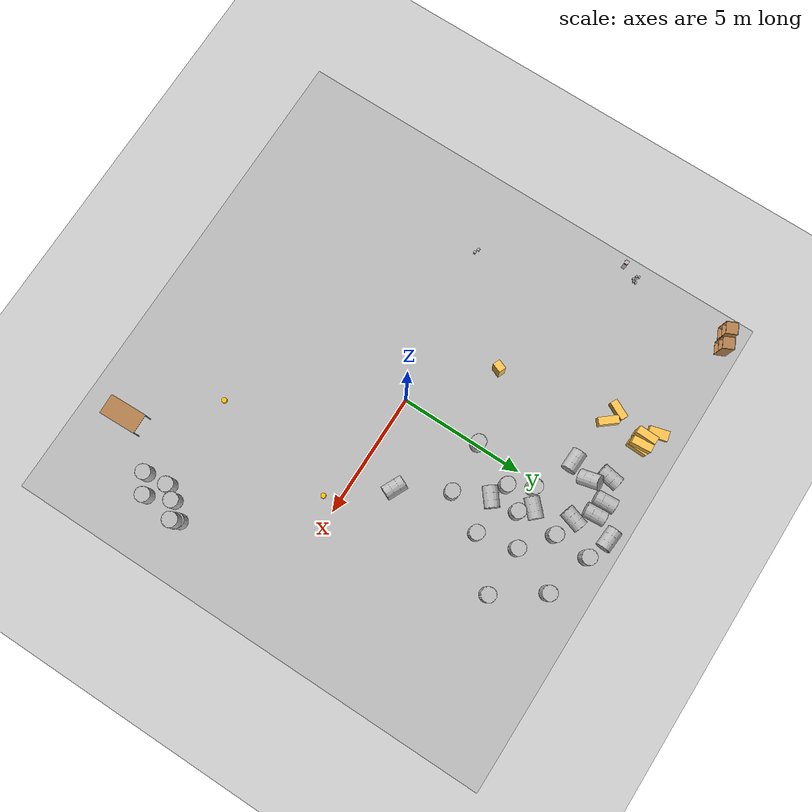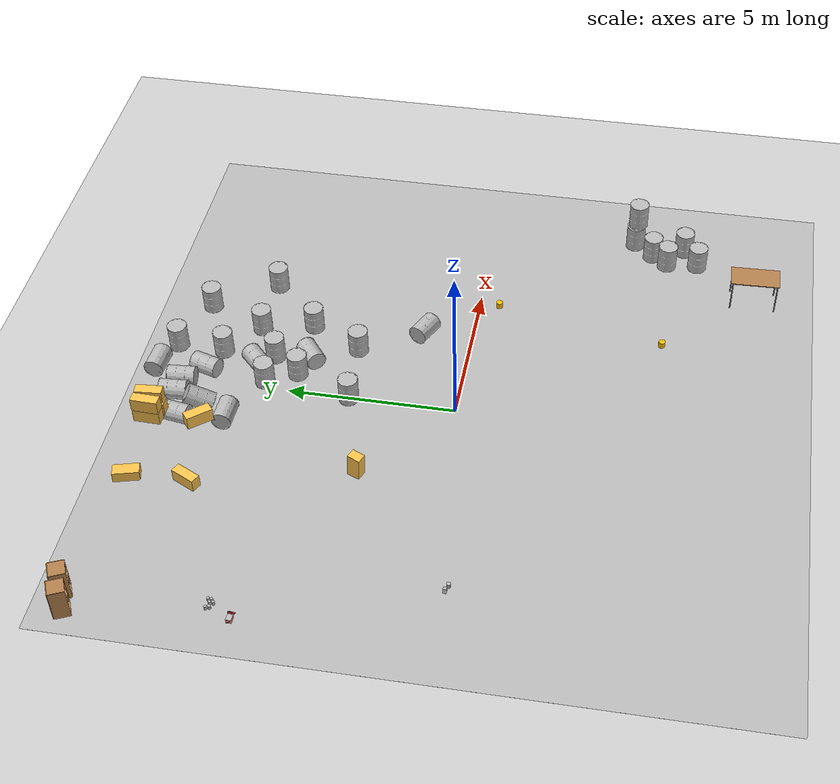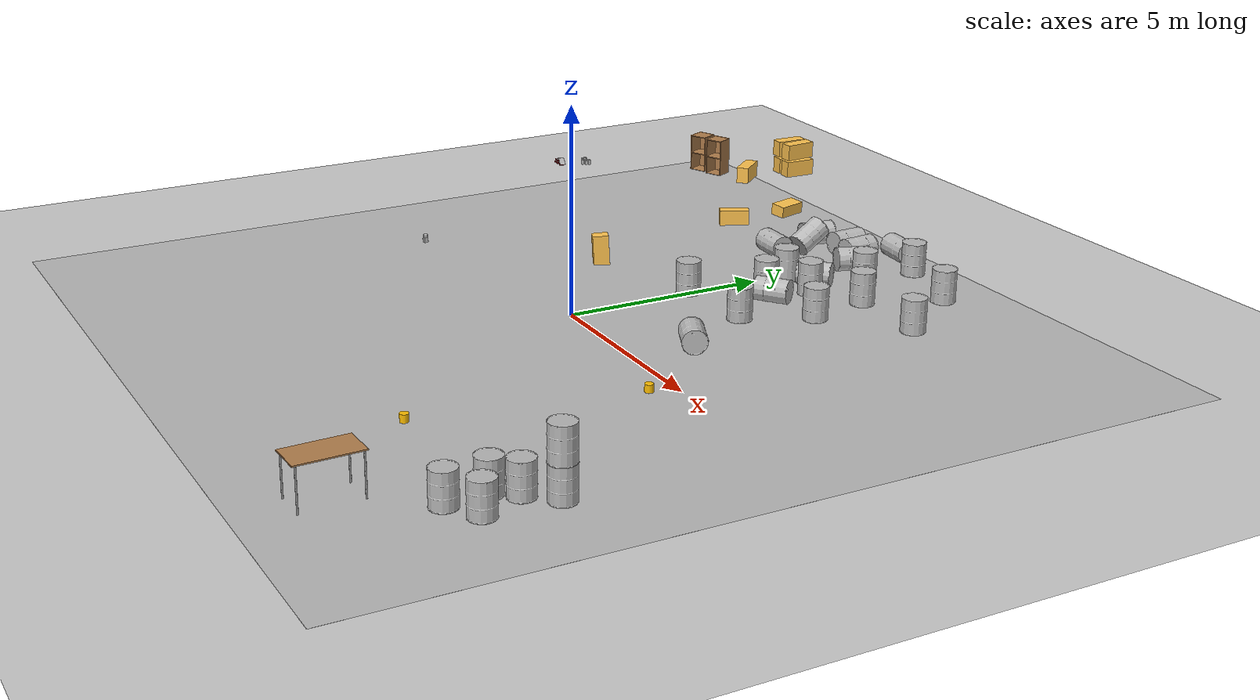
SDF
<sdf version="1.7">
 <world name="default">
  <model name="ground_plane">
   <static>1</static>
   <link name="link">
    <collision name="collision">
     <geometry><plane><normal>0 0 1</normal><size>100 100</size></plane></geometry>
     <surface><friction><ode><mu>100</mu><mu2>50</mu2></ode></friction></surface>
    </collision>
    <visual name="visual">
     <cast_shadows>0</cast_shadows>
     <geometry><plane><normal>0 0 1</normal><size>100 100</size></plane></geometry>
     <material>
      <script><uri>file://media/materials/scripts/gazebo.material</uri><name>Gazebo/Grey</name></script>
     </material>
    </visual>
   </link>
  </model>
  <model name="Box_15x30">
   <link name="Wall">
    <pose>0 0 0.1985 0 -0 0</pose>
    <inertial>
     <mass>5</mass>
     <inertia><ixx>0.3089</ixx><iyy>0.1022</iyy><izz>0.2797</izz><ixy>0</ixy><ixz>0</ixz><iyz>0</iyz></inertia>
    </inertial>
    <collision name="Wall_Collision"><geometry><box><size>0.296 0.764 0.397</size></box></geometry></collision>
    <visual name="Wall_Visual">
     <geometry><box><size>0.296 0.764 0.397</size></box></geometry>
     <material>
      <script><uri>file://media/materials/scripts/gazebo.material</uri><name>Gazebo/Grey</name></script>
      <ambient>1 0.764706 0.305882 1</ambient>
     </material>
    </visual>
   </link>
   <static>1</static>
   <pose>-3.02054 6.65631 1.55151 0 -0 0.691063</pose>
  </model>
  <model name="cabinet">
   <static>1</static>
   <link name="cabinet_bottom_plate">
    <inertial>
     <pose>0 0 -1 0 -0 0</pose>
     <inertia><ixx>2.05</ixx><ixy>0</ixy><ixz>0</ixz><iyy>2.05</iyy><iyz>0</iyz><izz>2.05</izz></inertia>
     <mass>25</mass>
    </inertial>
    <collision name="cabinet_bottom_plate_geom">
     <pose>0 0 0.01 0 -0 0</pose>
     <geometry><box><size>0.45 0.45 0.02</size></box></geometry>
    </collision>
    <visual name="cabinet_bottom_plate_geom_visual">
     <pose>0 0 0.01 0 -0 0</pose>
     <geometry><box><size>0.45 0.45 0.02</size></box></geometry>
     <material>
      <script><uri>file://media/materials/scripts/gazebo.material</uri><name>Gazebo/Wood</name></script>
     </material>
    </visual>
    <collision name="cabinet_bottom_plate_geom_cabinet_back_plate">
     <pose>0.235 0 0.51 0 -0 0</pose>
     <geometry><box><size>0.02 0.45 1.02</size></box></geometry>
    </collision>
    <visual name="cabinet_bottom_plate_geom_cabinet_back_plate_visual">
     <pose>0.235 0 0.51 0 -0 0</pose>
     <geometry><box><size>0.02 0.45 1.02</size></box></geometry>
     <material>
      <script><uri>file://media/materials/scripts/gazebo.material</uri><name>Gazebo/Wood</name></script>
     </material>
    </visual>
    <collision name="cabinet_bottom_plate_geom_cabinet_left_plate">
     <pose>0 0.235 0.51 0 -0 0</pose>
     <geometry><box><size>0.45 0.02 1.02</size></box></geometry>
    </collision>
    <visual name="cabinet_bottom_plate_geom_cabinet_left_plate_visual">
     <pose>0 0.235 0.51 0 -0 0</pose>
     <geometry><box><size>0.45 0.02 1.02</size></box></geometry>
     <material>
      <script><uri>file://media/materials/scripts/gazebo.material</uri><name>Gazebo/Wood</name></script>
     </material>
    </visual>
    <collision name="cabinet_bottom_plate_geom_cabinet_middle_plate">
     <pose>0 0 0.51 0 -0 0</pose>
     <geometry><box><size>0.45 0.45 0.02</size></box></geometry>
    </collision>
    <visual name="cabinet_bottom_plate_geom_cabinet_middle_plate_visual">
     <pose>0 0 0.51 0 -0 0</pose>
     <geometry><box><size>0.45 0.45 0.02</size></box></geometry>
     <material>
      <script><uri>file://media/materials/scripts/gazebo.material</uri><name>Gazebo/Wood</name></script>
     </material>
    </visual>
    <collision name="cabinet_bottom_plate_geom_cabinet_right_plate">
     <pose>0 -0.235 0.51 0 -0 0</pose>
     <geometry><box><size>0.45 0.02 1.02</size></box></geometry>
    </collision>
    <visual name="cabinet_bottom_plate_geom_cabinet_right_plate_visual">
     <pose>0 -0.235 0.51 0 -0 0</pose>
     <geometry><box><size>0.45 0.02 1.02</size></box></geometry>
     <material>
      <script><uri>file://media/materials/scripts/gazebo.material</uri><name>Gazebo/Wood</name></script>
     </material>
    </visual>
    <collision name="cabinet_bottom_plate_geom_cabinet_top_plate">
     <pose>0 0 1.01 0 -0 0</pose>
     <geometry><box><size>0.45 0.45 0.02</size></box></geometry>
    </collision>
    <visual name="cabinet_bottom_plate_geom_cabinet_top_plate_visual">
     <pose>0 0 1.01 0 -0 0</pose>
     <geometry><box><size>0.45 0.45 0.02</size></box></geometry>
     <material>
      <script><uri>file://media/materials/scripts/gazebo.material</uri><name>Gazebo/Wood</name></script>
     </material>
    </visual>
   </link>
   <pose>-8.77211 8.83368 0 0 -0 2</pose>
  </model>
  <model name="cabinet_clone">
   <static>1</static>
   <link name="cabinet_bottom_plate">
    <inertial>
     <pose>0 0 -1 0 -0 0</pose>
     <inertia><ixx>2.05</ixx><ixy>0</ixy><ixz>0</ixz><iyy>2.05</iyy><iyz>0</iyz><izz>2.05</izz></inertia>
     <mass>25</mass>
    </inertial>
    <collision name="cabinet_bottom_plate_geom">
     <pose>0 0 0.01 0 -0 0</pose>
     <geometry><box><size>0.45 0.45 0.02</size></box></geometry>
    </collision>
    <visual name="cabinet_bottom_plate_geom_visual">
     <pose>0 0 0.01 0 -0 0</pose>
     <geometry><box><size>0.45 0.45 0.02</size></box></geometry>
     <material>
      <script><uri>file://media/materials/scripts/gazebo.material</uri><name>Gazebo/Wood</name></script>
     </material>
    </visual>
    <collision name="cabinet_bottom_plate_geom_cabinet_back_plate">
     <pose>0.235 0 0.51 0 -0 0</pose>
     <geometry><box><size>0.02 0.45 1.02</size></box></geometry>
    </collision>
    <visual name="cabinet_bottom_plate_geom_cabinet_back_plate_visual">
     <pose>0.235 0 0.51 0 -0 0</pose>
     <geometry><box><size>0.02 0.45 1.02</size></box></geometry>
     <material>
      <script><uri>file://media/materials/scripts/gazebo.material</uri><name>Gazebo/Wood</name></script>
     </material>
    </visual>
    <collision name="cabinet_bottom_plate_geom_cabinet_left_plate">
     <pose>0 0.235 0.51 0 -0 0</pose>
     <geometry><box><size>0.45 0.02 1.02</size></box></geometry>
    </collision>
    <visual name="cabinet_bottom_plate_geom_cabinet_left_plate_visual">
     <pose>0 0.235 0.51 0 -0 0</pose>
     <geometry><box><size>0.45 0.02 1.02</size></box></geometry>
     <material>
      <script><uri>file://media/materials/scripts/gazebo.material</uri><name>Gazebo/Wood</name></script>
     </material>
    </visual>
    <collision name="cabinet_bottom_plate_geom_cabinet_middle_plate">
     <pose>0 0 0.51 0 -0 0</pose>
     <geometry><box><size>0.45 0.45 0.02</size></box></geometry>
    </collision>
    <visual name="cabinet_bottom_plate_geom_cabinet_middle_plate_visual">
     <pose>0 0 0.51 0 -0 0</pose>
     <geometry><box><size>0.45 0.45 0.02</size></box></geometry>
     <material>
      <script><uri>file://media/materials/scripts/gazebo.material</uri><name>Gazebo/Wood</name></script>
     </material>
    </visual>
    <collision name="cabinet_bottom_plate_geom_cabinet_right_plate">
     <pose>0 -0.235 0.51 0 -0 0</pose>
     <geometry><box><size>0.45 0.02 1.02</size></box></geometry>
    </collision>
    <visual name="cabinet_bottom_plate_geom_cabinet_right_plate_visual">
     <pose>0 -0.235 0.51 0 -0 0</pose>
     <geometry><box><size>0.45 0.02 1.02</size></box></geometry>
     <material>
      <script><uri>file://media/materials/scripts/gazebo.material</uri><name>Gazebo/Wood</name></script>
     </material>
    </visual>
    <collision name="cabinet_bottom_plate_geom_cabinet_top_plate">
     <pose>0 0 1.01 0 -0 0</pose>
     <geometry><box><size>0.45 0.45 0.02</size></box></geometry>
    </collision>
    <visual name="cabinet_bottom_plate_geom_cabinet_top_plate_visual">
     <pose>0 0 1.01 0 -0 0</pose>
     <geometry><box><size>0.45 0.45 0.02</size></box></geometry>
     <material>
      <script><uri>file://media/materials/scripts/gazebo.material</uri><name>Gazebo/Wood</name></script>
     </material>
    </visual>
   </link>
   <pose>-8.20771 9.0077 0 0 -0 2</pose>
  </model>
  <model name="coffee_box">
   <link name="link_0">
    <visual name="visual">
     <pose>0 0 0.06 0 -0 0</pose>
     <geometry><cylinder><radius>0.04</radius><length>0.12</length></cylinder></geometry>
     <material>
      <script>
       <uri>model://coffee_box/materials/scripts</uri>
       <uri>model://coffee_box/materials/textures</uri>
       <name>coffee_pat</name>
      </script>
     </material>
    </visual>
    <collision name="collision">
     <geometry><cylinder><radius>0.04</radius><length>0.12</length></cylinder></geometry>
    </collision>
   </link>
   <static>1</static>
   <pose>-8.39102 4.9248 0.776361 0 -0 0</pose>
  </model>
  <model name="coffee_box_clone">
   <link name="link_0">
    <visual name="visual">
     <pose>0 0 0.06 0 -0 0</pose>
     <geometry><cylinder><radius>0.04</radius><length>0.12</length></cylinder></geometry>
     <material>
      <script>
       <uri>model://coffee_box/materials/scripts</uri>
       <uri>model://coffee_box/materials/textures</uri>
       <name>coffee_pat</name>
      </script>
     </material>
    </visual>
    <collision name="collision">
     <geometry><cylinder><radius>0.04</radius><length>0.12</length></cylinder></geometry>
    </collision>
   </link>
   <static>1</static>
   <pose>-8.4911 4.86199 0.776361 0 -0 0</pose>
  </model>
  <model name="coffee_box_clone_0">
   <link name="link_0">
    <visual name="visual">
     <pose>0 0 0.06 0 -0 0</pose>
     <geometry><cylinder><radius>0.04</radius><length>0.12</length></cylinder></geometry>
     <material>
      <script>
       <uri>model://coffee_box/materials/scripts</uri>
       <uri>model://coffee_box/materials/textures</uri>
       <name>coffee_pat</name>
      </script>
     </material>
    </visual>
    <collision name="collision">
     <geometry><cylinder><radius>0.04</radius><length>0.12</length></cylinder></geometry>
    </collision>
   </link>
   <static>1</static>
   <pose>-8.40065 4.83683 0.776361 0 -0 0</pose>
  </model>
  <model name="coffee_box_clone_1">
   <link name="link_0">
    <visual name="visual">
     <pose>0 0 0.06 0 -0 0</pose>
     <geometry><cylinder><radius>0.04</radius><length>0.12</length></cylinder></geometry>
     <material>
      <script>
       <uri>model://coffee_box/materials/scripts</uri>
       <uri>model://coffee_box/materials/textures</uri>
       <name>coffee_pat</name>
      </script>
     </material>
    </visual>
    <collision name="collision">
     <geometry><cylinder><radius>0.04</radius><length>0.12</length></cylinder></geometry>
    </collision>
   </link>
   <static>1</static>
   <pose>-8.48638 4.76785 0.776361 0 -0 0</pose>
  </model>
  <model name="coffee_box_clone_2">
   <link name="link_0">
    <visual name="visual">
     <pose>0 0 0.06 0 -0 0</pose>
     <geometry><cylinder><radius>0.04</radius><length>0.12</length></cylinder></geometry>
     <material>
      <script>
       <uri>model://coffee_box/materials/scripts</uri>
       <uri>model://coffee_box/materials/textures</uri>
       <name>coffee_pat</name>
      </script>
     </material>
    </visual>
    <collision name="collision">
     <geometry><cylinder><radius>0.04</radius><length>0.12</length></cylinder></geometry>
    </collision>
   </link>
   <static>1</static>
   <pose>-8.63013 4.82993 0.776361 0 -0 0</pose>
  </model>
  <model name="coffee_box_clone_3">
   <link name="link_0">
    <visual name="visual">
     <pose>0 0 0.06 0 -0 0</pose>
     <geometry><cylinder><radius>0.04</radius><length>0.12</length></cylinder></geometry>
     <material>
      <script>
       <uri>model://coffee_box/materials/scripts</uri>
       <uri>model://coffee_box/materials/textures</uri>
       <name>coffee_pat</name>
      </script>
     </material>
    </visual>
    <collision name="collision">
     <geometry><cylinder><radius>0.04</radius><length>0.12</length></cylinder></geometry>
    </collision>
   </link>
   <static>1</static>
   <pose>-8.66125 4.92731 0.776361 0 -0 0</pose>
  </model>
  <model name="biscuit_box">
   <link name="link">
    <pose>0 0 0.025 0 -0 0</pose>
    <visual name="visual">
     <geometry><box><size>0.2 0.15 0.05</size></box></geometry>
     <material>
      <ambient>0.423 0.019 0.035 1</ambient>
      <diffuse>0.423 0.019 0.035 1</diffuse>
      <specular>0.01 0.01 0.01 1</specular>
      <emissive>0 0 0 1</emissive>
     </material>
    </visual>
    <collision name="collision"><geometry><box><size>0.1 0.1 0.15</size></box></geometry></collision>
   </link>
   <link name="link_1">
    <pose>0 0 0.05 0 -0 0</pose>
    <visual name="visual">
     <geometry><box><size>0.2 0.15 0.001</size></box></geometry>
     <material>
      <script>
       <uri>model://biscuit_box/materials/scripts</uri>
       <uri>model://biscuit_box/materials/textures</uri>
       <name>biscuit_pat</name>
      </script>
     </material>
    </visual>
    <collision name="collision"><geometry><box><size>0.1 0.1 0.15</size></box></geometry></collision>
   </link>
   <static>1</static>
   <pose>-8.88673 4.23471 0.838766 0 0 -0.080076</pose>
  </model>
  <model name="biscuit_box_clone_0">
   <link name="link">
    <pose>0 0 0.025 0 -0 0</pose>
    <visual name="visual">
     <geometry><box><size>0.2 0.15 0.05</size></box></geometry>
     <material>
      <ambient>0.423 0.019 0.035 1</ambient>
      <diffuse>0.423 0.019 0.035 1</diffuse>
      <specular>0.01 0.01 0.01 1</specular>
      <emissive>0 0 0 1</emissive>
     </material>
    </visual>
    <collision name="collision"><geometry><box><size>0.1 0.1 0.15</size></box></geometry></collision>
   </link>
   <link name="link_1">
    <pose>0 0 0.05 0 -0 0</pose>
    <visual name="visual">
     <geometry><box><size>0.2 0.15 0.001</size></box></geometry>
     <material>
      <script>
       <uri>model://biscuit_box/materials/scripts</uri>
       <uri>model://biscuit_box/materials/textures</uri>
       <name>biscuit_pat</name>
      </script>
     </material>
    </visual>
    <collision name="collision"><geometry><box><size>0.1 0.1 0.15</size></box></geometry></collision>
   </link>
   <static>1</static>
   <pose>-8.89674 4.23031 0.776684 0 -0 0</pose>
  </model>
  <model name="biscuit_box_clone_2">
   <link name="link">
    <pose>0 0 0.025 0 -0 0</pose>
    <visual name="visual">
     <geometry><box><size>0.2 0.15 0.05</size></box></geometry>
     <material>
      <ambient>0.423 0.019 0.035 1</ambient>
      <diffuse>0.423 0.019 0.035 1</diffuse>
      <specular>0.01 0.01 0.01 1</specular>
      <emissive>0 0 0 1</emissive>
     </material>
    </visual>
    <collision name="collision"><geometry><box><size>0.1 0.1 0.15</size></box></geometry></collision>
   </link>
   <link name="link_1">
    <pose>0 0 0.05 0 -0 0</pose>
    <visual name="visual">
     <geometry><box><size>0.2 0.15 0.001</size></box></geometry>
     <material>
      <script>
       <uri>model://biscuit_box/materials/scripts</uri>
       <uri>model://biscuit_box/materials/textures</uri>
       <name>biscuit_pat</name>
      </script>
     </material>
    </visual>
    <collision name="collision"><geometry><box><size>0.1 0.1 0.15</size></box></geometry></collision>
   </link>
   <static>1</static>
   <pose>-8.74577 4.22735 0.838766 0 0.906388 -0.080076</pose>
  </model>
  <model name="Box_15x30_clone">
   <link name="Wall">
    <pose>0 0 0.1985 0 -0 0</pose>
    <inertial>
     <mass>5</mass>
     <inertia><ixx>0.3089</ixx><iyy>0.1022</iyy><izz>0.2797</izz><ixy>0</ixy><ixz>0</ixz><iyz>0</iyz></inertia>
    </inertial>
    <collision name="Wall_Collision"><geometry><box><size>0.296 0.764 0.397</size></box></geometry></collision>
    <visual name="Wall_Visual">
     <geometry><box><size>0.296 0.764 0.397</size></box></geometry>
     <material>
      <script><uri>file://media/materials/scripts/gazebo.material</uri><name>Gazebo/Grey</name></script>
      <ambient>1 0.764706 0.305882 1</ambient>
     </material>
    </visual>
   </link>
   <static>1</static>
   <pose>-2.78141 8.03759 1.5515 0 0 -0.031938</pose>
  </model>
  <model name="Box_15x30_clone_clone">
   <link name="Wall">
    <pose>0 0 0.1985 0 -0 0</pose>
    <inertial>
     <mass>5</mass>
     <inertia><ixx>0.3089</ixx><iyy>0.1022</iyy><izz>0.2797</izz><ixy>0</ixy><ixz>0</ixz><iyz>0</iyz></inertia>
    </inertial>
    <collision name="Wall_Collision"><geometry><box><size>0.296 0.764 0.397</size></box></geometry></collision>
    <visual name="Wall_Visual">
     <geometry><box><size>0.296 0.764 0.397</size></box></geometry>
     <material>
      <script><uri>file://media/materials/scripts/gazebo.material</uri><name>Gazebo/Grey</name></script>
      <ambient>1 0.764706 0.305882 1</ambient>
     </material>
    </visual>
   </link>
   <static>1</static>
   <pose>-3.1629 8.04866 1.5515 0 0 -0.031938</pose>
  </model>
  <model name="Box_15x30_clone_clone_0">
   <link name="Wall">
    <pose>0 0 0.1985 0 -0 0</pose>
    <inertial>
     <mass>5</mass>
     <inertia><ixx>0.3089</ixx><iyy>0.1022</iyy><izz>0.2797</izz><ixy>0</ixy><ixz>0</ixz><iyz>0</iyz></inertia>
    </inertial>
    <collision name="Wall_Collision"><geometry><box><size>0.296 0.764 0.397</size></box></geometry></collision>
    <visual name="Wall_Visual">
     <geometry><box><size>0.296 0.764 0.397</size></box></geometry>
     <material>
      <script><uri>file://media/materials/scripts/gazebo.material</uri><name>Gazebo/Grey</name></script>
      <ambient>1 0.764706 0.305882 1</ambient>
     </material>
    </visual>
   </link>
   <static>1</static>
   <pose>-2.8223 8.04967 1.99212 0 -0 0.070577</pose>
  </model>
  <model name="Box_15x30_clone_clone_0_clone">
   <link name="Wall">
    <pose>0 0 0.1985 0 -0 0</pose>
    <inertial>
     <mass>5</mass>
     <inertia><ixx>0.3089</ixx><iyy>0.1022</iyy><izz>0.2797</izz><ixy>0</ixy><ixz>0</ixz><iyz>0</iyz></inertia>
    </inertial>
    <collision name="Wall_Collision"><geometry><box><size>0.296 0.764 0.397</size></box></geometry></collision>
    <visual name="Wall_Visual">
     <geometry><box><size>0.296 0.764 0.397</size></box></geometry>
     <material>
      <script><uri>file://media/materials/scripts/gazebo.material</uri><name>Gazebo/Grey</name></script>
      <ambient>1 0.764706 0.305882 1</ambient>
     </material>
    </visual>
   </link>
   <static>1</static>
   <pose>-3.18877 8.03993 1.99212 0 0 -0.031938</pose>
  </model>
  <model name="Box_15x30_clone_clone_clone">
   <link name="Wall">
    <pose>0 0 0.1985 0 -0 0</pose>
    <inertial>
     <mass>5</mass>
     <inertia><ixx>0.3089</ixx><iyy>0.1022</iyy><izz>0.2797</izz><ixy>0</ixy><ixz>0</ixz><iyz>0</iyz></inertia>
    </inertial>
    <collision name="Wall_Collision"><geometry><box><size>0.296 0.764 0.397</size></box></geometry></collision>
    <visual name="Wall_Visual">
     <geometry><box><size>0.296 0.764 0.397</size></box></geometry>
     <material>
      <script><uri>file://media/materials/scripts/gazebo.material</uri><name>Gazebo/Grey</name></script>
      <ambient>1 0.764706 0.305882 1</ambient>
     </material>
    </visual>
   </link>
   <static>1</static>
   <pose>-3.98125 6.92031 0.021086 0 0 -0.459084</pose>
  </model>
  <model name="Box_15x30_clone_clone_clone_clone">
   <link name="Wall">
    <pose>0 0 0.1985 0 -0 0</pose>
    <inertial>
     <mass>5</mass>
     <inertia><ixx>0.3089</ixx><iyy>0.1022</iyy><izz>0.2797</izz><ixy>0</ixy><ixz>0</ixz><iyz>0</iyz></inertia>
    </inertial>
    <collision name="Wall_Collision"><geometry><box><size>0.296 0.764 0.397</size></box></geometry></collision>
    <visual name="Wall_Visual">
     <geometry><box><size>0.296 0.764 0.397</size></box></geometry>
     <material>
      <script><uri>file://media/materials/scripts/gazebo.material</uri><name>Gazebo/Grey</name></script>
      <ambient>1 0.764706 0.305882 1</ambient>
     </material>
    </visual>
   </link>
   <static>1</static>
   <pose>-3.84843 8.68396 0.169655 0 -1.47913 0.262274</pose>
  </model>
  <model name="tea_box">
   <link name="link">
    <pose>0 0 0.075 0 -0 0</pose>
    <visual name="visual">
     <geometry><box><size>0.1 0.1 0.15</size></box></geometry>
     <material>
      <script>
       <uri>model://tea_box/materials/scripts</uri>
       <uri>model://tea_box/materials/textures</uri>
       <name>tea_pat</name>
      </script>
     </material>
    </visual>
    <collision name="collision"><geometry><box><size>0.1 0.1 0.15</size></box></geometry></collision>
   </link>
   <static>1</static>
   <pose>-6.38264 -0.920342 0 0 -0 0</pose>
  </model>
  <model name="tea_box_0">
   <link name="link">
    <pose>0 0 0.075 0 -0 0</pose>
    <visual name="visual">
     <geometry><box><size>0.1 0.1 0.15</size></box></geometry>
     <material>
      <script>
       <uri>model://tea_box/materials/scripts</uri>
       <uri>model://tea_box/materials/textures</uri>
       <name>tea_pat</name>
      </script>
     </material>
    </visual>
    <collision name="collision"><geometry><box><size>0.1 0.1 0.15</size></box></geometry></collision>
   </link>
   <static>1</static>
   <pose>-6.5734 -0.851757 0.00381 0 0.200112 0</pose>
  </model>
  <model name="table">
   <static>1</static>
   <link name="link">
    <collision name="surface">
     <pose>0 0 1 0 -0 0</pose>
     <geometry><box><size>1.5 0.8 0.03</size></box></geometry>
     <surface><friction><ode><mu>0.6</mu><mu2>0.6</mu2></ode></friction></surface>
    </collision>
    <visual name="visual1">
     <pose>0 0 1 0 -0 0</pose>
     <geometry><box><size>1.5 0.8 0.03</size></box></geometry>
     <material>
      <script><uri>file://media/materials/scripts/gazebo.material</uri><name>Gazebo/Wood</name></script>
     </material>
    </visual>
    <collision name="front_left_leg">
     <pose>0.68 0.38 0.5 0 -0 0</pose>
     <geometry><cylinder><radius>0.02</radius><length>1</length></cylinder></geometry>
    </collision>
    <visual name="front_left_leg">
     <pose>0.68 0.38 0.5 0 -0 0</pose>
     <geometry><cylinder><radius>0.02</radius><length>1</length></cylinder></geometry>
     <material>
      <script><uri>file://media/materials/scripts/gazebo.material</uri><name>Gazebo/Grey</name></script>
     </material>
    </visual>
    <collision name="front_right_leg">
     <pose>0.68 -0.38 0.5 0 -0 0</pose>
     <geometry><cylinder><radius>0.02</radius><length>1</length></cylinder></geometry>
    </collision>
    <visual name="front_right_leg">
     <pose>0.68 -0.38 0.5 0 -0 0</pose>
     <geometry><cylinder><radius>0.02</radius><length>1</length></cylinder></geometry>
     <material>
      <script><uri>file://media/materials/scripts/gazebo.material</uri><name>Gazebo/Grey</name></script>
     </material>
    </visual>
    <collision name="back_right_leg">
     <pose>-0.68 -0.38 0.5 0 -0 0</pose>
     <geometry><cylinder><radius>0.02</radius><length>1</length></cylinder></geometry>
    </collision>
    <visual name="back_right_leg">
     <pose>-0.68 -0.38 0.5 0 -0 0</pose>
     <geometry><cylinder><radius>0.02</radius><length>1</length></cylinder></geometry>
     <material>
      <script><uri>file://media/materials/scripts/gazebo.material</uri><name>Gazebo/Grey</name></script>
     </material>
    </visual>
    <collision name="back_left_leg">
     <pose>-0.68 0.38 0.5 0 -0 0</pose>
     <geometry><cylinder><radius>0.02</radius><length>1</length></cylinder></geometry>
    </collision>
    <visual name="back_left_leg">
     <pose>-0.68 0.38 0.5 0 -0 0</pose>
     <geometry><cylinder><radius>0.02</radius><length>1</length></cylinder></geometry>
     <material>
      <script><uri>file://media/materials/scripts/gazebo.material</uri><name>Gazebo/Grey</name></script>
     </material>
    </visual>
   </link>
   <pose>6.23222 -8.37348 0 0 -0 1.6</pose>
  </model>
  <model name="toxic_barrel">
   <static>0</static>
   <link name="link">
    <visual name="visual">
     <geometry><mesh><uri>model://toxic_barrel/meshes/barrel_red.obj</uri></mesh></geometry>
    </visual>
    <collision name="collision">
     <geometry><mesh><uri>model://toxic_barrel/meshes/barrel_red.obj</uri></mesh></geometry>
    </collision>
    <inertial>
     <inertia><ixx>1</ixx><ixy>0</ixy><ixz>0</ixz><iyy>1</iyy><iyz>0</iyz><izz>1</izz></inertia>
     <mass>1</mass>
    </inertial>
   </link>
   <pose>-1.62584 7.93495 0.306208 8e-06 -0.196378 -0.160984</pose>
  </model>
  <model name="toxic_barrel_clone">
   <static>0</static>
   <link name="link">
    <visual name="visual">
     <geometry><mesh><uri>model://toxic_barrel/meshes/barrel_red.obj</uri></mesh></geometry>
    </visual>
    <collision name="collision">
     <geometry><mesh><uri>model://toxic_barrel/meshes/barrel_red.obj</uri></mesh></geometry>
    </collision>
    <inertial>
     <inertia><ixx>1</ixx><ixy>0</ixy><ixz>0</ixz><iyy>1</iyy><iyz>0</iyz><izz>1</izz></inertia>
     <mass>1</mass>
    </inertial>
   </link>
   <pose>-0.152655 8.17784 0.306205 -1e-06 -0.589074 0.075545</pose>
  </model>
  <model name="toxic_barrel_clone_clone">
   <static>0</static>
   <link name="link">
    <visual name="visual">
     <geometry><mesh><uri>model://toxic_barrel/meshes/barrel_red.obj</uri></mesh></geometry>
    </visual>
    <collision name="collision">
     <geometry><mesh><uri>model://toxic_barrel/meshes/barrel_red.obj</uri></mesh></geometry>
    </collision>
    <inertial>
     <inertia><ixx>1</ixx><ixy>0</ixy><ixz>0</ixz><iyy>1</iyy><iyz>0</iyz><izz>1</izz></inertia>
     <mass>1</mass>
    </inertial>
   </link>
   <pose>0.356808 9.06526 0.306196 1e-06 -0.589078 1.4983</pose>
  </model>
  <model name="toxic_barrel_clone_clone_1">
   <static>0</static>
   <link name="link">
    <visual name="visual">
     <geometry><mesh><uri>model://toxic_barrel/meshes/barrel_red.obj</uri></mesh></geometry>
    </visual>
    <collision name="collision">
     <geometry><mesh><uri>model://toxic_barrel/meshes/barrel_red.obj</uri></mesh></geometry>
    </collision>
    <inertial>
     <inertia><ixx>1</ixx><ixy>0</ixy><ixz>0</ixz><iyy>1</iyy><iyz>0</iyz><izz>1</izz></inertia>
     <mass>1</mass>
    </inertial>
   </link>
   <pose>-0.749007 8.25217 0.306198 4e-06 -0.589051 0.05948</pose>
  </model>
  <model name="toxic_barrel_clone_clone_2">
   <static>0</static>
   <link name="link">
    <visual name="visual">
     <geometry><mesh><uri>model://toxic_barrel/meshes/barrel_red.obj</uri></mesh></geometry>
    </visual>
    <collision name="collision">
     <geometry><mesh><uri>model://toxic_barrel/meshes/barrel_red.obj</uri></mesh></geometry>
    </collision>
    <inertial>
     <inertia><ixx>1</ixx><ixy>0</ixy><ixz>0</ixz><iyy>1</iyy><iyz>0</iyz><izz>1</izz></inertia>
     <mass>1</mass>
    </inertial>
   </link>
   <pose>0.416552 7.59535 0.306203 -5e-06 -0.589071 -0.305276</pose>
  </model>
  <model name="toxic_barrel_clone_clone_4">
   <static>0</static>
   <link name="link">
    <visual name="visual">
     <geometry><mesh><uri>model://toxic_barrel/meshes/barrel_red.obj</uri></mesh></geometry>
    </visual>
    <collision name="collision">
     <geometry><mesh><uri>model://toxic_barrel/meshes/barrel_red.obj</uri></mesh></geometry>
    </collision>
    <inertial>
     <inertia><ixx>1</ixx><ixy>0</ixy><ixz>0</ixz><iyy>1</iyy><iyz>0</iyz><izz>1</izz></inertia>
     <mass>1</mass>
    </inertial>
   </link>
   <pose>-1.11891 7.34592 0.469092 0.519911 -0.334916 -0.034729</pose>
  </model>
  <model name="toxic_barrel_clone_clone_3_clone">
   <static>0</static>
   <link name="link">
    <visual name="visual">
     <geometry><mesh><uri>model://toxic_barrel/meshes/barrel_red.obj</uri></mesh></geometry>
    </visual>
    <collision name="collision">
     <geometry><mesh><uri>model://toxic_barrel/meshes/barrel_red.obj</uri></mesh></geometry>
    </collision>
    <inertial>
     <inertia><ixx>1</ixx><ixy>0</ixy><ixz>0</ixz><iyy>1</iyy><iyz>0</iyz><izz>1</izz></inertia>
     <mass>1</mass>
    </inertial>
   </link>
   <pose>0.711533 4.87481 0.426368 -1.57058 0.003731 2.11692</pose>
  </model>
  <model name="toxic_barrel_clone_clone_3_clone_clone">
   <static>0</static>
   <link name="link">
    <visual name="visual">
     <geometry><mesh><uri>model://toxic_barrel/meshes/barrel_red.obj</uri></mesh></geometry>
    </visual>
    <collision name="collision">
     <geometry><mesh><uri>model://toxic_barrel/meshes/barrel_red.obj</uri></mesh></geometry>
    </collision>
    <inertial>
     <inertia><ixx>1</ixx><ixy>0</ixy><ixz>0</ixz><iyy>1</iyy><iyz>0</iyz><izz>1</izz></inertia>
     <mass>1</mass>
    </inertial>
   </link>
   <pose>0.234428 5.76213 0.426501 -1.56973 0.004588 2.67636</pose>
  </model>
  <model name="toxic_barrel_clone_clone_3_clone_clone_0">
   <static>0</static>
   <link name="link">
    <visual name="visual">
     <geometry><mesh><uri>model://toxic_barrel/meshes/barrel_red.obj</uri></mesh></geometry>
    </visual>
    <collision name="collision">
     <geometry><mesh><uri>model://toxic_barrel/meshes/barrel_red.obj</uri></mesh></geometry>
    </collision>
    <inertial>
     <inertia><ixx>1</ixx><ixy>0</ixy><ixz>0</ixz><iyy>1</iyy><iyz>0</iyz><izz>1</izz></inertia>
     <mass>1</mass>
    </inertial>
   </link>
   <pose>1.33411 5.71263 0.426375 -1.57279 0.003699 2.07911</pose>
  </model>
  <model name="toxic_barrel_clone_clone_3_clone_clone_1">
   <static>0</static>
   <link name="link">
    <visual name="visual">
     <geometry><mesh><uri>model://toxic_barrel/meshes/barrel_red.obj</uri></mesh></geometry>
    </visual>
    <collision name="collision">
     <geometry><mesh><uri>model://toxic_barrel/meshes/barrel_red.obj</uri></mesh></geometry>
    </collision>
    <inertial>
     <inertia><ixx>1</ixx><ixy>0</ixy><ixz>0</ixz><iyy>1</iyy><iyz>0</iyz><izz>1</izz></inertia>
     <mass>1</mass>
    </inertial>
   </link>
   <pose>1.31408 7.30661 0.42632 -1.57116 0.004005 2.18098</pose>
  </model>
  <model name="toxic_barrel_clone_clone_3_clone_clone_2">
   <static>0</static>
   <link name="link">
    <visual name="visual">
     <geometry><mesh><uri>model://toxic_barrel/meshes/barrel_red.obj</uri></mesh></geometry>
    </visual>
    <collision name="collision">
     <geometry><mesh><uri>model://toxic_barrel/meshes/barrel_red.obj</uri></mesh></geometry>
    </collision>
    <inertial>
     <inertia><ixx>1</ixx><ixy>0</ixy><ixz>0</ixz><iyy>1</iyy><iyz>0</iyz><izz>1</izz></inertia>
     <mass>1</mass>
    </inertial>
   </link>
   <pose>1.36281 8.733 0.426619 -1.56984 0.002255 2.1833</pose>
  </model>
  <model name="toxic_barrel_clone_clone_3_clone_clone_3">
   <static>0</static>
   <link name="link">
    <visual name="visual">
     <geometry><mesh><uri>model://toxic_barrel/meshes/barrel_red.obj</uri></mesh></geometry>
    </visual>
    <collision name="collision">
     <geometry><mesh><uri>model://toxic_barrel/meshes/barrel_red.obj</uri></mesh></geometry>
    </collision>
    <inertial>
     <inertia><ixx>1</ixx><ixy>0</ixy><ixz>0</ixz><iyy>1</iyy><iyz>0</iyz><izz>1</izz></inertia>
     <mass>1</mass>
    </inertial>
   </link>
   <pose>2.47693 6.41136 0.426318 -1.56991 0.003982 2.18437</pose>
  </model>
  <model name="toxic_barrel_clone_clone_3_clone_clone_4">
   <static>0</static>
   <link name="link">
    <visual name="visual">
     <geometry><mesh><uri>model://toxic_barrel/meshes/barrel_red.obj</uri></mesh></geometry>
    </visual>
    <collision name="collision">
     <geometry><mesh><uri>model://toxic_barrel/meshes/barrel_red.obj</uri></mesh></geometry>
    </collision>
    <inertial>
     <inertia><ixx>1</ixx><ixy>0</ixy><ixz>0</ixz><iyy>1</iyy><iyz>0</iyz><izz>1</izz></inertia>
     <mass>1</mass>
    </inertial>
   </link>
   <pose>3.23139 8.19694 0.426338 -1.57135 0.003855 2.17706</pose>
  </model>
  <model name="toxic_barrel_clone_clone_3_clone_clone_5">
   <static>0</static>
   <link name="link">
    <visual name="visual">
     <geometry><mesh><uri>model://toxic_barrel/meshes/barrel_red.obj</uri></mesh></geometry>
    </visual>
    <collision name="collision">
     <geometry><mesh><uri>model://toxic_barrel/meshes/barrel_red.obj</uri></mesh></geometry>
    </collision>
    <inertial>
     <inertia><ixx>1</ixx><ixy>0</ixy><ixz>0</ixz><iyy>1</iyy><iyz>0</iyz><izz>1</izz></inertia>
     <mass>1</mass>
    </inertial>
   </link>
   <pose>2.80995 4.85949 0.426329 -1.56964 0.003913 2.18572</pose>
  </model>
  <model name="toxic_barrel_clone_clone_3_clone_clone_6">
   <static>0</static>
   <link name="link">
    <visual name="visual">
     <geometry><mesh><uri>model://toxic_barrel/meshes/barrel_red.obj</uri></mesh></geometry>
    </visual>
    <collision name="collision">
     <geometry><mesh><uri>model://toxic_barrel/meshes/barrel_red.obj</uri></mesh></geometry>
    </collision>
    <inertial>
     <inertia><ixx>1</ixx><ixy>0</ixy><ixz>0</ixz><iyy>1</iyy><iyz>0</iyz><izz>1</izz></inertia>
     <mass>1</mass>
    </inertial>
   </link>
   <pose>4.46678 6.38296 0.426421 -1.57349 0.003499 2.18074</pose>
  </model>
  <model name="toxic_barrel_clone_clone_3_clone_clone_7">
   <static>0</static>
   <link name="link">
    <visual name="visual">
     <geometry><mesh><uri>model://toxic_barrel/meshes/barrel_red.obj</uri></mesh></geometry>
    </visual>
    <collision name="collision">
     <geometry><mesh><uri>model://toxic_barrel/meshes/barrel_red.obj</uri></mesh></geometry>
    </collision>
    <inertial>
     <inertia><ixx>1</ixx><ixy>0</ixy><ixz>0</ixz><iyy>1</iyy><iyz>0</iyz><izz>1</izz></inertia>
     <mass>1</mass>
    </inertial>
   </link>
   <pose>2.01657 3.30832 0.426365 -1.56923 0.003753 1.80647</pose>
  </model>
  <model name="toxic_barrel_clone_clone_3_clone_clone_8">
   <static>0</static>
   <link name="link">
    <visual name="visual">
     <geometry><mesh><uri>model://toxic_barrel/meshes/barrel_red.obj</uri></mesh></geometry>
    </visual>
    <collision name="collision">
     <geometry><mesh><uri>model://toxic_barrel/meshes/barrel_red.obj</uri></mesh></geometry>
    </collision>
    <inertial>
     <inertia><ixx>1</ixx><ixy>0</ixy><ixz>0</ixz><iyy>1</iyy><iyz>0</iyz><izz>1</izz></inertia>
     <mass>1</mass>
    </inertial>
   </link>
   <pose>-0.037986 3.16274 0.426647 -1.5735 0.00229 2.18645</pose>
  </model>
  <model name="toxic_barrel_clone_clone_0_clone">
   <static>0</static>
   <link name="link">
    <visual name="visual">
     <geometry><mesh><uri>model://toxic_barrel/meshes/barrel_red.obj</uri></mesh></geometry>
    </visual>
    <collision name="collision">
     <geometry><mesh><uri>model://toxic_barrel/meshes/barrel_red.obj</uri></mesh></geometry>
    </collision>
    <inertial>
     <inertia><ixx>1</ixx><ixy>0</ixy><ixz>0</ixz><iyy>1</iyy><iyz>0</iyz><izz>1</izz></inertia>
     <mass>1</mass>
    </inertial>
   </link>
   <pose>0.874625 6.15936 0.306205 -1e-06 -0.19638 -0.812243</pose>
  </model>
  <model name="toxic_barrel_clone_clone_0_clone_0">
   <static>0</static>
   <link name="link">
    <visual name="visual">
     <geometry><mesh><uri>model://toxic_barrel/meshes/barrel_red.obj</uri></mesh></geometry>
    </visual>
    <collision name="collision">
     <geometry><mesh><uri>model://toxic_barrel/meshes/barrel_red.obj</uri></mesh></geometry>
    </collision>
    <inertial>
     <inertia><ixx>1</ixx><ixy>0</ixy><ixz>0</ixz><iyy>1</iyy><iyz>0</iyz><izz>1</izz></inertia>
     <mass>1</mass>
    </inertial>
   </link>
   <pose>1.38291 4.62192 0.306193 -3.14159 0.589068 2.23053</pose>
  </model>
  <model name="toxic_barrel_clone_clone_3_clone_0">
   <static>0</static>
   <link name="link">
    <visual name="visual">
     <geometry><mesh><uri>model://toxic_barrel/meshes/barrel_red.obj</uri></mesh></geometry>
    </visual>
    <collision name="collision">
     <geometry><mesh><uri>model://toxic_barrel/meshes/barrel_red.obj</uri></mesh></geometry>
    </collision>
    <inertial>
     <inertia><ixx>1</ixx><ixy>0</ixy><ixz>0</ixz><iyy>1</iyy><iyz>0</iyz><izz>1</izz></inertia>
     <mass>1</mass>
    </inertial>
   </link>
   <pose>3.03724 1.45077 0.306398 3.14159 1.37111 1.13292</pose>
  </model>
  <model name="toxic_barrel_clone_clone_3_clone_0_clone">
   <static>0</static>
   <link name="link">
    <visual name="visual">
     <geometry><mesh><uri>model://toxic_barrel/meshes/barrel_red.obj</uri></mesh></geometry>
    </visual>
    <collision name="collision">
     <geometry><mesh><uri>model://toxic_barrel/meshes/barrel_red.obj</uri></mesh></geometry>
    </collision>
    <inertial>
     <inertia><ixx>1</ixx><ixy>0</ixy><ixz>0</ixz><iyy>1</iyy><iyz>0</iyz><izz>1</izz></inertia>
     <mass>1</mass>
    </inertial>
   </link>
   <pose>-1.42151 6.50459 0.306205 3.14159 0.196378 -1.60311</pose>
  </model>
  <model name="toxic_barrel_clone_clone_3_clone_clone_7_clone">
   <static>0</static>
   <link name="link">
    <visual name="visual">
     <geometry><mesh><uri>model://toxic_barrel/meshes/barrel_red.obj</uri></mesh></geometry>
    </visual>
    <collision name="collision">
     <geometry><mesh><uri>model://toxic_barrel/meshes/barrel_red.obj</uri></mesh></geometry>
    </collision>
    <inertial>
     <inertia><ixx>1</ixx><ixy>0</ixy><ixz>0</ixz><iyy>1</iyy><iyz>0</iyz><izz>1</izz></inertia>
     <mass>1</mass>
    </inertial>
   </link>
   <pose>8.25818 -6.10512 0.426327 -1.57101 0.003978 1.83114</pose>
  </model>
  <model name="toxic_barrel_clone_clone_3_clone_clone_7_clone_1">
   <static>0</static>
   <link name="link">
    <visual name="visual">
     <geometry><mesh><uri>model://toxic_barrel/meshes/barrel_red.obj</uri></mesh></geometry>
    </visual>
    <collision name="collision">
     <geometry><mesh><uri>model://toxic_barrel/meshes/barrel_red.obj</uri></mesh></geometry>
    </collision>
    <inertial>
     <inertia><ixx>1</ixx><ixy>0</ixy><ixz>0</ixz><iyy>1</iyy><iyz>0</iyz><izz>1</izz></inertia>
     <mass>1</mass>
    </inertial>
   </link>
   <pose>7.57188 -6.56448 0.426355 -1.57237 0.003811 1.89234</pose>
  </model>
  <model name="toxic_barrel_clone_clone_3_clone_clone_7_clone_2">
   <static>0</static>
   <link name="link">
    <visual name="visual">
     <geometry><mesh><uri>model://toxic_barrel/meshes/barrel_red.obj</uri></mesh></geometry>
    </visual>
    <collision name="collision">
     <geometry><mesh><uri>model://toxic_barrel/meshes/barrel_red.obj</uri></mesh></geometry>
    </collision>
    <inertial>
     <inertia><ixx>1</ixx><ixy>0</ixy><ixz>0</ixz><iyy>1</iyy><iyz>0</iyz><izz>1</izz></inertia>
     <mass>1</mass>
    </inertial>
   </link>
   <pose>7.85752 -5.11686 0.426372 -1.57275 0.003715 2.21712</pose>
  </model>
  <model name="toxic_barrel_clone_clone_3_clone_clone_7_clone_3">
   <static>0</static>
   <link name="link">
    <visual name="visual">
     <geometry><mesh><uri>model://toxic_barrel/meshes/barrel_red.obj</uri></mesh></geometry>
    </visual>
    <collision name="collision">
     <geometry><mesh><uri>model://toxic_barrel/meshes/barrel_red.obj</uri></mesh></geometry>
    </collision>
    <inertial>
     <inertia><ixx>1</ixx><ixy>0</ixy><ixz>0</ixz><iyy>1</iyy><iyz>0</iyz><izz>1</izz></inertia>
     <mass>1</mass>
    </inertial>
   </link>
   <pose>8.36644 -4.52388 0.426329 -1.56985 0.00396 1.72544</pose>
  </model>
  <model name="toxic_barrel_clone_clone_3_clone_clone_7_clone_3_clone_clone">
   <static>0</static>
   <link name="link">
    <visual name="visual">
     <geometry><mesh><uri>model://toxic_barrel/meshes/barrel_red.obj</uri></mesh></geometry>
    </visual>
    <collision name="collision">
     <geometry><mesh><uri>model://toxic_barrel/meshes/barrel_red.obj</uri></mesh></geometry>
    </collision>
    <inertial>
     <inertia><ixx>1</ixx><ixy>0</ixy><ixz>0</ixz><iyy>1</iyy><iyz>0</iyz><izz>1</izz></inertia>
     <mass>1</mass>
    </inertial>
   </link>
   <pose>7.4882 -5.60842 0.426377 -1.56873 0.003686 -0.23686</pose>
  </model>
  <model name="toxic_barrel_clone_clone_3_clone_clone_7_clone_3_clone_clone_0">
   <static>0</static>
   <link name="link">
    <visual name="visual">
     <geometry><mesh><uri>model://toxic_barrel/meshes/barrel_red.obj</uri></mesh></geometry>
    </visual>
    <collision name="collision">
     <geometry><mesh><uri>model://toxic_barrel/meshes/barrel_red.obj</uri></mesh></geometry>
    </collision>
    <inertial>
     <inertia><ixx>1</ixx><ixy>0</ixy><ixz>0</ixz><iyy>1</iyy><iyz>0</iyz><izz>1</izz></inertia>
     <mass>1</mass>
    </inertial>
   </link>
   <pose>8.4144 -4.5547 1.2579 -1.57586 0.010591 1.7767</pose>
  </model>
  <model name="cylinder_yo">
   <link name="link_0">
    <pose>0 0 0.1 0 -0 0</pose>
    <inertial>
     <mass>1</mass>
     <inertia><ixx>0.145833</ixx><ixy>0</ixy><ixz>0</ixz><iyy>0.145833</iyy><iyz>0</iyz><izz>0.125</izz></inertia>
    </inertial>
    <visual name="visual">
     <geometry><cylinder><radius>0.1</radius><length>0.2</length></cylinder></geometry>
     <material>
      <lighting>1</lighting>
      <script><uri>file://media/materials/scripts/gazebo.material</uri><name>Gazebo/Grey</name></script>
      <ambient>1 0.749 0 1</ambient>
      <diffuse>1 0.749 0 1</diffuse>
      <specular>0 0 0 1</specular>
      <emissive>0 0 0 1</emissive>
      <shader type="vertex"><normal_map>__default__</normal_map></shader>
     </material>
    </visual>
    <collision name="collision">
     <geometry><cylinder><radius>0.1</radius><length>0.2</length></cylinder></geometry>
     <surface>
      <friction>
       <ode><mu>1</mu><mu2>1</mu2><fdir1>0 0 0</fdir1><slip1>0</slip1><slip2>0</slip2></ode>
       <torsional>
        <coefficient>1</coefficient>
        <patch_radius>0</patch_radius>
        <surface_radius>0</surface_radius>
        <use_patch_radius>1</use_patch_radius>
        <ode><slip>0</slip></ode>
       </torsional>
      </friction>
      <bounce><restitution_coefficient>0</restitution_coefficient><threshold>1e+06</threshold></bounce>
      <contact>
       <collide_without_contact>0</collide_without_contact>
       <collide_without_contact_bitmask>1</collide_without_contact_bitmask>
       <collide_bitmask>1</collide_bitmask>
       <ode>
        <soft_cfm>0</soft_cfm>
        <soft_erp>0.2</soft_erp>
        <kp>1e+13</kp>
        <kd>1</kd>
        <max_vel>0.01</max_vel>
        <min_depth>0</min_depth>
       </ode>
       <bullet>
        <split_impulse>1</split_impulse>
        <split_impulse_penetration_threshold>-0.01</split_impulse_penetration_threshold>
        <soft_cfm>0</soft_cfm>
        <soft_erp>0.2</soft_erp>
        <kp>1e+13</kp>
        <kd>1</kd>
       </bullet>
      </contact>
     </surface>
    </collision>
   </link>
   <static>1</static>
   <pose>4.69473 -0.610294 0 0 -0 0</pose>
  </model>
  <model name="cylinder_yo_clone">
   <link name="link_0">
    <pose>0 0 0.1 0 -0 0</pose>
    <inertial>
     <mass>1</mass>
     <inertia><ixx>0.145833</ixx><ixy>0</ixy><ixz>0</ixz><iyy>0.145833</iyy><iyz>0</iyz><izz>0.125</izz></inertia>
    </inertial>
    <visual name="visual">
     <geometry><cylinder><radius>0.1</radius><length>0.2</length></cylinder></geometry>
     <material>
      <lighting>1</lighting>
      <script><uri>file://media/materials/scripts/gazebo.material</uri><name>Gazebo/Grey</name></script>
      <ambient>1 0.749 0 1</ambient>
      <diffuse>1 0.749 0 1</diffuse>
      <specular>0 0 0 1</specular>
      <emissive>0 0 0 1</emissive>
      <shader type="vertex"><normal_map>__default__</normal_map></shader>
     </material>
    </visual>
    <collision name="collision">
     <geometry><cylinder><radius>0.1</radius><length>0.2</length></cylinder></geometry>
     <surface>
      <friction>
       <ode><mu>1</mu><mu2>1</mu2><fdir1>0 0 0</fdir1><slip1>0</slip1><slip2>0</slip2></ode>
       <torsional>
        <coefficient>1</coefficient>
        <patch_radius>0</patch_radius>
        <surface_radius>0</surface_radius>
        <use_patch_radius>1</use_patch_radius>
        <ode><slip>0</slip></ode>
       </torsional>
      </friction>
      <bounce><restitution_coefficient>0</restitution_coefficient><threshold>1e+06</threshold></bounce>
      <contact>
       <collide_without_contact>0</collide_without_contact>
       <collide_without_contact_bitmask>1</collide_without_contact_bitmask>
       <collide_bitmask>1</collide_bitmask>
       <ode>
        <soft_cfm>0</soft_cfm>
        <soft_erp>0.2</soft_erp>
        <kp>1e+13</kp>
        <kd>1</kd>
        <max_vel>0.01</max_vel>
        <min_depth>0</min_depth>
       </ode>
       <bullet>
        <split_impulse>1</split_impulse>
        <split_impulse_penetration_threshold>-0.01</split_impulse_penetration_threshold>
        <soft_cfm>0</soft_cfm>
        <soft_erp>0.2</soft_erp>
        <kp>1e+13</kp>
        <kd>1</kd>
       </bullet>
      </contact>
     </surface>
    </collision>
   </link>
   <static>1</static>
   <pose>3.7284 -5.73972 0 0 -0 0</pose>
  </model>
  <model name="Box_15x30_clone_0">
   <link name="Wall">
    <pose>0 0 0.1985 0 -0 0</pose>
    <inertial>
     <mass>5</mass>
     <inertia><ixx>0.3089</ixx><iyy>0.1022</iyy><izz>0.2797</izz><ixy>0</ixy><ixz>0</ixz><iyz>0</iyz></inertia>
    </inertial>
    <collision name="Wall_Collision"><geometry><box><size>0.296 0.764 0.397</size></box></geometry></collision>
    <visual name="Wall_Visual">
     <geometry><box><size>0.296 0.764 0.397</size></box></geometry>
     <material>
      <script><uri>file://media/materials/scripts/gazebo.material</uri><name>Gazebo/Grey</name></script>
      <ambient>1 0.764706 0.305882 1</ambient>
     </material>
    </visual>
   </link>
   <static>1</static>
   <pose>-2.94957 2.12907 0.367898 -1.51357 -0 -0.387377</pose>
  </model>
  <model name="Floor_room">
   <link name="main">
    <pose>0 0 0.01 0 -0 0</pose>
    <collision name="main_Collision"><geometry><box><size>20 20 0.001</size></box></geometry></collision>
    <visual name="main_Visual">
     <geometry><box><size>20 20 0.001</size></box></geometry>
     <material>
      <script>
       <uri>model://Floor_room/materials/scripts</uri>
       <uri>model://Floor_room/materials/textures</uri>
       <name>floor_room</name>
      </script>
     </material>
    </visual>
   </link>
   <static>1</static>
   <pose>0.496998 -0.26888 0 0 -0 0</pose>
  </model>
 </world>
</sdf>
